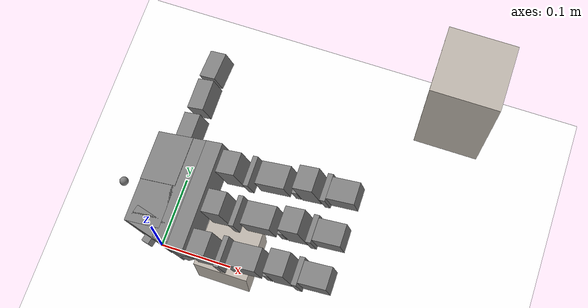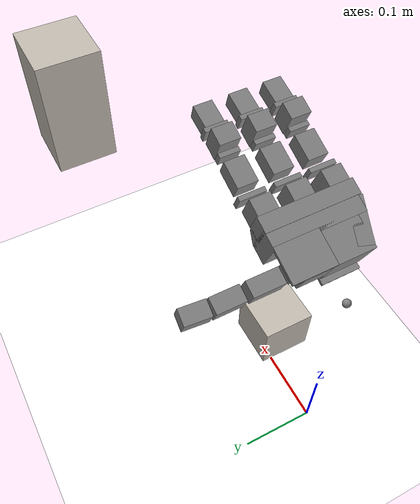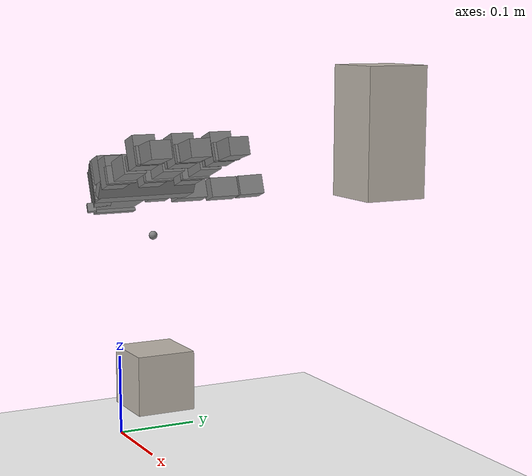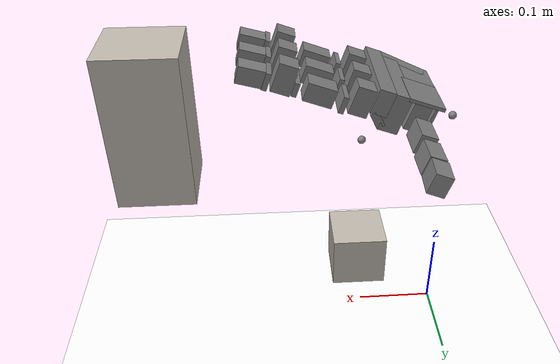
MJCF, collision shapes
<mujoco model="leap_scene">
  <include file="leap_rh_freejoint_mjx.xml"/>
  <include file="../cube/reorientation_cube.xml"/>

  <statistic center="0.15 0 0" extent="0.4" meansize="0.01"/>
  <size nuserdata="1"/>

  <default>
    <default class="translation">
      <position kp="10" dampratio="1" ctrlrange="-.5 .5"/>
    </default>
    <default class="rotation">
      <position kp=".5" dampratio="1" ctrlrange="-1.571 1.571"/>
    </default>
  </default>

  <visual>
    <headlight diffuse=".8 .8 .8" ambient=".2 .2 .2" specular="1 1 1"/>
    <rgba force="1 0 0 1"/>
    <global azimuth="120" elevation="-20"/>
    <map force="0.01" stiffness="500"/>
    <scale forcewidth="0.1" contactwidth="0.5" contactheight="0.2"/>
    <quality shadowsize="8192"/>
  </visual>

  <asset>
    <texture type="skybox" builtin="gradient" rgb1="1 1 1" rgb2="1 1 1" width="800" height="800"/>
    <texture type="2d" name="groundplane" builtin="checker" mark="edge" rgb1="1 1 1" rgb2="1 1 1" markrgb="0 0 0"
      width="300" height="300"/>
    <material name="groundplane" texture="groundplane" texuniform="true" texrepeat="5 5" reflectance="0"/>
  </asset>

  <default>
    <default class="cube">
      <geom friction="0.3 0.05 0.01" conaffinity="2" />
    </default>
  </default>

  <worldbody>
    <camera name="side" pos="-0.183 0.396 0.296" xyaxes="-0.783 -0.622 -0.000 0.332 -0.419 0.845"/>
    <geom name="floor" pos="0 0 0" size="0 0 0.01" type="plane" material="groundplane" contype="1" conaffinity="1"/>
    <body name="target" mocap="true" pos="0.325 0.17 0.4">
      <geom type="box" size=".035 .035 .07" mass=".108" material="cube" contype="0" conaffinity="0" group="2"/>
    </body>
  </worldbody>

  <actuator>
    <general name="LRTx" site="leap_base" refsite="reference" gear="1 0 0 0 0 0" class="translation"/>
    <general name="LRTy" site="leap_base" refsite="reference" gear="0 1 0 0 0 0" class="translation"/>
    <general name="LRTz" site="leap_base" refsite="reference" gear="0 0 1 0 0 0" class="translation"/>
    <general name="LRRx" site="leap_base" refsite="reference" gear="0 0 0 1 0 0" class="rotation"/>
    <general name="LRRy" site="leap_base" refsite="reference" gear="0 0 0 0 1 0" class="rotation"/>
    <general name="LRRz" site="leap_base" refsite="reference" gear="0 0 0 0 0 1" class="rotation"/>
  </actuator>

  <sensor>
    <!-- cube. -->
    <framepos name="cube_position" objtype="body" objname="cube"/>
    <contact name="cube_contact_with_palm" geom1="cube" geom2="palm_visual" data="found force"/>
    <contact name="cube_contact_with_th_tip" geom1="cube" geom2="th_tip" data="found force"/>
    <contact name="cube_contact_with_if_tip" geom1="cube" geom2="if_tip" data="found force"/>
    <contact name="cube_contact_with_mf_tip" geom1="cube" geom2="mf_tip" data="found force"/>
    <contact name="cube_contact_with_rf_tip" geom1="cube" geom2="rf_tip" data="found force"/>
    <framepos name="cube_distance_to_grasp" objtype="body" objname="cube" reftype="site" refname="grasp_site" />
    <framepos name="cube_distance_from_target" objtype="body" objname="cube" reftype="body" refname="target"/>
    <framequat name="cube_orientation_from_target" objtype="body" objname="cube" reftype="body" refname="target"/>
    <framepos name="grasp_distance_from_target" objtype="site" objname="grasp_site" reftype="body" refname="target"/>
    <framelinvel name="cube_linvel" objtype="body" objname="cube"/>
    <frameangvel name="cube_angvel" objtype="body" objname="cube"/>
    <frameangacc name="cube_angacc" objtype="body" objname="cube"/>
    <framezaxis name="cube_upvector" objtype="body" objname="cube"/>

    <!-- hand. -->
    <framepos name="palm_position" objtype="site" objname="grasp_site"/>
    <framepos name="th_tip_distance_to_cube" objtype="site" objname="th_tip" reftype="body" refname="cube"/>
    <framepos name="if_tip_distance_to_cube" objtype="site" objname="if_tip" reftype="body" refname="cube"/>
    <framepos name="mf_tip_distance_to_cube" objtype="site" objname="mf_tip" reftype="body" refname="cube"/>
    <framepos name="rf_tip_distance_to_cube" objtype="site" objname="rf_tip" reftype="body" refname="cube"/>

    <!-- goal. -->
    <framequat name="cube_goal_orientation" objtype="body" objname="target"/>
    <framezaxis name="cube_goal_upvector" objtype="body" objname="target"/>
  </sensor>

</mujoco>

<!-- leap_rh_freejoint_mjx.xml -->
<mujoco model="leap_rh">
  <compiler angle="radian" autolimits="true" assetdir="assets"/>

  <option timestep="0.01" integrator="Euler" iterations="5" ls_iterations="8">
    <flag eulerdamp="disable"/>
  </option>

  <custom>
    <numeric data="30" name="max_contact_points"/>
    <numeric data="12" name="max_geom_pairs"/>
  </custom>

  <asset>
    <material name="black" rgba="0.2 0.2 0.2 1"/>
    <material name="gray" rgba="0.5 0.5 0.5 1"/>
    <mesh name="leap_mount" file="leap_mount.obj"/>

    <mesh name="palm" file="palm_right.obj"/>
    <mesh name="base" file="base.obj"/>
    <mesh name="proximal" file="proximal.obj"/>
    <mesh name="medial" file="medial.obj"/>
    <mesh name="distal" file="distal.obj"/>
    <mesh name="tip" file="tip.obj"/>
    <mesh name="thumb_base" file="thumb_base.obj"/>
    <mesh name="thumb_proximal" file="thumb_proximal.obj"/>
    <mesh name="thumb_distal" file="thumb_distal.obj"/>
    <mesh name="thumb_tip" file="thumb_tip.obj"/>
  </asset>

  <default>
    <default class="leap_rh">
      <geom group="3" friction="0.2" solref="0.02 1.5" solimp="0.9 0.99 0.001"/>
      <default class="visual">
        <geom group="2" type="mesh" contype="0" conaffinity="0" density="0" material="black"/>
      </default>
      <default class="tip">
        <geom size="0.01 0.012 0.016" pos="-0.0012969 -0.0335524 0.0145207"
              quat="0.703552 0.709596 -0.0292107 -0.0252203" type="box" friction="0.7 0.05 0.0002" rgba=".5 .5 .5 .3"/>
      </default>
      <default class="thumb_tip">
        <geom size="0.01 0.012 0.016" pos="-0.00127744 -0.0455619 -0.0144774"
              quat="0.708101 0.705072 -0.0294902 -0.024426" type="box" friction="0.7 0.05 0.0002" rgba=".5 .5 .5 .3"/>
      </default>

      <position kp="3.0" inheritrange="1"/>
      <!-- armature = rotor inertia * gear ratio^2 = 1.7 * 1e-8 * 288*288 = 0.00149376 -->
      <!-- max torque = 0.2196 = 600/1000*0.366 -->
      <!-- frictionloss = rough guess, small ish value -->
      <joint axis="0 0 -1" damping="0.2" armature="0.00149376" actuatorfrcrange="-0.2196 0.2196" frictionloss="0.02"/>

      <default class="mcp">
        <joint range="-0.314 2.23"/>
      </default>
      <default class="rot">
        <joint range="-1.047 1.047"/>
      </default>
      <default class="pip">
        <joint range="-0.506 1.885"/>
      </default>
      <default class="dip">
        <joint range="-0.366 2.042"/>
      </default>
      <default class="thumb_cmc">
        <joint range="-0.349 2.094"/>
      </default>
      <default class="thumb_axl">
        <joint range="-0.349 2.094"/>
      </default>
      <default class="thumb_mcp">
        <joint range="-0.47 2.443"/>
      </default>
      <default class="thumb_ipl">
        <joint range="-1.34 1.88"/>
      </default>

    </default>
  </default>

  <contact>
    <!-- filter the palm from all other finger bodies except the tips -->
    <exclude body1="palm" body2="if_bs"/>
    <exclude body1="palm" body2="mf_bs"/>
    <exclude body1="palm" body2="rf_bs"/>
    <exclude body1="palm" body2="th_mp"/>

    <exclude body1="palm" body2="if_px"/>
    <exclude body1="palm" body2="mf_px"/>
    <exclude body1="palm" body2="rf_px"/>
    <exclude body1="palm" body2="th_bs"/>

    <exclude body1="palm" body2="if_md"/>
    <exclude body1="palm" body2="mf_md"/>
    <exclude body1="palm" body2="rf_md"/>
    <exclude body1="palm" body2="th_px"/>

    <!-- filter the mount from all finger bodies except the tips -->
    <exclude body1="leap_mount" body2="if_bs"/>
    <exclude body1="leap_mount" body2="mf_bs"/>
    <exclude body1="leap_mount" body2="rf_bs"/>
    <exclude body1="leap_mount" body2="th_mp"/>

    <exclude body1="leap_mount" body2="if_px"/>
    <exclude body1="leap_mount" body2="mf_px"/>
    <exclude body1="leap_mount" body2="rf_px"/>
    <exclude body1="leap_mount" body2="th_bs"/>

    <exclude body1="leap_mount" body2="if_md"/>
    <exclude body1="leap_mount" body2="mf_md"/>
    <exclude body1="leap_mount" body2="rf_md"/>
    <exclude body1="leap_mount" body2="th_px"/>

    <!-- none of the base fingertip geoms can touch each other -->
    <exclude body1="if_bs" body2="mf_bs"/>
    <exclude body1="if_bs" body2="rf_bs"/>
    <exclude body1="mf_bs" body2="rf_bs"/>

    <exclude body1="th_mp" body2="if_bs"/>
    <exclude body1="th_mp" body2="mf_bs"/>
    <exclude body1="th_mp" body2="rf_bs"/>
  </contact>

  <worldbody>
    <light name="spotlight" mode="targetbodycom" target="palm" pos="3 0 4"/>
    <site name="reference" pos="0 0 0.3" quat="0 1 0 0"/>
    <body name="leap_mount" pos="0 0 0.3" quat="0 1 0 0" childclass="leap_rh" gravcomp="1">
      <site name="leap_base"/>
      <freejoint name="leap_base_freejoint"/>
      <geom name="leap_mount_visual" pos="0 0 0" quat="1 0 0 0" class="visual" mesh="leap_mount"/>
      <geom name="leap_mount_collision_0" size="0.002 0.025 0.005" pos="0.0405 0.02 0.009"
            quat="0.57346234 0 0.81923192 0" type="box"/>
      <geom name="leap_mount_collision_1" size="0.005 0.005 0.005" pos="0.05 0.053 0.002"
            quat="0.4987168 0.64994038 -0.34910175 0.45495826" type="box"/>
      <site name="grasp_site" pos="0.11 0.0 0.03"/>
      <body name="palm" pos="0.124 -0.0305 -0.06045" quat="0 1 0 -0.175" gravcomp="1">
        <inertial pos="-0.049542 -0.042914 -0.010227" quat="0.565586 0.427629 -0.574956 0.408254" mass="0.237"
                  diaginertia="0.000407345 0.000304759 0.000180736"/>
        <geom name="palm_visual" pos="-0.02 0.02575 -0.0347" quat="1 0 0 0" class="visual" mesh="palm"/>
        <geom name="palm_collision_1" size="0.011 0.013 0.017" pos="-0.009 0.008 -0.011" type="box"/>
        <geom name="palm_collision_2" size="0.011 0.013 0.017" pos="-0.009 -0.037 -0.011" type="box"/>
        <geom name="palm_collision_3" size="0.011 0.013 0.017" pos="-0.009 -0.082 -0.011" type="box"/>
        <geom name="palm_collision_4" size="0.029 0.01 0.023" pos="-0.066 -0.078 -0.0115" quat="0.989016 0 0 -0.147806"
              type="box"/>
        <geom name="palm_collision_5" size="0.01 0.06 0.015" pos="-0.03 -0.035 -0.003" type="box"/>
        <geom name="palm_collision_6" size="0.005 0.06 0.01" pos="-0.032 -0.035 -0.024" quat="0.923956 0 0.382499 0"
              type="box"/>
        <geom name="palm_collision_7" size="0.012 0.058 0.023" pos="-0.048 -0.033 -0.0115" type="box"/>
        <geom name="palm_collision_8" size="0.022 0.026 0.023" pos="-0.078 -0.053 -0.0115" type="box"/>
        <geom name="palm_collision_9" size="0.002 0.018 0.017" pos="-0.098 -0.009 -0.006" type="box"/>
        <geom name="palm_collision_10" size="0.022 0.028 0.002" pos="-0.078 -0.003 0.01" type="box"/>
        <body name="if_bs" pos="-0.007 0.023 -0.0187" quat="0.5 0.5 0.5 -0.5" gravcomp="1">
          <inertial pos="-0.022516 0.033882 0.016359" quat="0.388092 0.677951 -0.247713 0.573067" mass="0.044"
                    diaginertia="1.74972e-05 1.61504e-05 7.21342e-06"/>
          <joint name="if_mcp" class="mcp"/>
          <geom name="if_bs_visual" pos="0.0084 0.0077 0.01465" quat="1 0 0 0" class="visual" mesh="base"/>
          <geom name="if_bs_collision" size="0.01 0.003 0.017" pos="0 0.018 0.0147" type="box"/>
          <body name="if_px" pos="-0.0122 0.0381 0.0145" quat="0.500003 -0.5 -0.499997 0.5" gravcomp="1">
            <inertial pos="0.0075 -0.0002 -0.011" quat="0 0.707107 0 0.707107" mass="0.032"
                      diaginertia="4.8853e-06 4.3733e-06 3.0933e-06"/>
            <joint name="if_rot" class="rot"/>
            <geom name="if_px_visual" pos="0.0096 0.0002 0.0007" quat="0.500003 -0.5 -0.5 -0.499997" class="visual"
                  mesh="proximal"/>
            <geom name="if_px_collision" size="0.017 0.013 0.011" pos="0.0075 -0.0002 -0.011" type="box"/>

            <body name="if_md" pos="0.015 0.0143 -0.013" quat="0.500003 0.5 -0.5 0.499997" gravcomp="1">
              <inertial pos="0.0054215 -0.029148 0.015" quat="0.687228 0.687228 0.166487 0.166487" mass="0.037"
                        diaginertia="8.28004e-06 8.1598e-06 5.39516e-06"/>
              <joint name="if_pip" class="pip"/>
              <geom name="if_md_visual" pos="0.0211 -0.0084 0.0097" quat="2.67949e-08 -1 0 0" class="visual"
                    mesh="medial"/>
              <geom name="if_md_collision_1" size="0.008 0.003 0.013" pos="0 -0.02 0.015" type="box"/>
              <geom name="if_md_collision_2" size="0.017 0.011 0.013" pos="0.0075 -0.035 0.015" type="box"/>
              <body name="if_ds" pos="0 -0.0361 0.0002" gravcomp="1">
                <inertial pos="-0.0008794 -0.027019 0.014594" quat="0.702905 0.710643 -0.0212937 -0.0214203"
                          mass="0.016" diaginertia="3.71863e-06 3.02396e-06 1.6518e-06"/>
                <joint name="if_dip" class="dip"/>
                <geom name="if_ds_visual" pos="0.0132 -0.0061 0.0144" quat="2.67949e-08 1 0 0" class="visual"
                      mesh="distal"/>
                <geom name="if_ds_collision" size="0.01 0.003 0.015" pos="0 -0.017 0.015" type="box"/>
                <geom name="if_tip" class="tip"/>
                <geom type="mesh" mesh="tip" class="visual" material="gray"/>
                <site name="if_tip" pos="0 -0.05 0.015" group="4"/>
              </body>
            </body>
          </body>
        </body>
        <body name="mf_bs" pos="-0.0071 -0.0224 -0.0187" quat="0.500003 0.5 0.5 -0.499997" gravcomp="1">
          <inertial pos="-0.022516 0.033882 0.016359" quat="0.388092 0.677951 -0.247713 0.573067" mass="0.044"
                    diaginertia="1.74972e-05 1.61504e-05 7.21342e-06"/>
          <joint name="mf_mcp" class="mcp"/>
          <geom name="mf_bs_visual" pos="0.0084 0.0077 0.01465" quat="1 0 0 0" class="visual" mesh="base"/>
          <geom name="mf_bs_collision" size="0.01 0.003 0.017" pos="0 0.018 0.0147" type="box"/>
          <body name="mf_px" pos="-0.0122 0.0381 0.0145" quat="0.500003 -0.5 -0.499997 0.5" gravcomp="1">
            <inertial pos="0.0075 -0.0002 -0.011" quat="0 0.707107 0 0.707107" mass="0.032"
                      diaginertia="4.8853e-06 4.3733e-06 3.0933e-06"/>
            <joint name="mf_rot" class="rot"/>
            <geom name="mf_px_visual" pos="0.0096 0.0003 0.0007" quat="0.500003 -0.5 -0.5 -0.499997" class="visual"
                  mesh="proximal"/>
            <geom name="mf_px_collision" size="0.017 0.013 0.011" pos="0.0075 -0.0002 -0.011" type="box"/>
            <body name="mf_md" pos="0.015 0.0143 -0.013" quat="0.500003 0.5 -0.5 0.499997" gravcomp="1">
              <inertial pos="0.0054215 -0.029148 0.015" quat="0.687228 0.687228 0.166487 0.166487" mass="0.037"
                        diaginertia="8.28004e-06 8.1598e-06 5.39516e-06"/>
              <joint name="mf_pip" class="pip"/>
              <geom name="mf_md_visual" pos="0.0211 -0.0084 0.0097" quat="1.32679e-06 -1 0 0" class="visual"
                    mesh="medial"/>
              <geom name="mf_md_collision_1" size="0.008 0.003 0.013" pos="0 -0.02 0.015" type="box"/>
              <geom name="mf_md_collision_2" size="0.017 0.011 0.013" pos="0.0075 -0.035 0.015" type="box"/>
              <body name="mf_ds" pos="0 -0.0361 0.0002" gravcomp="1">
                <inertial pos="-0.0008794 -0.027019 0.014594" quat="0.702905 0.710643 -0.0212937 -0.0214203"
                          mass="0.016" diaginertia="3.71863e-06 3.02396e-06 1.6518e-06"/>
                <joint name="mf_dip" class="dip"/>
                <geom name="mf_ds_visual" pos="0.0132 -0.0061 0.0145" quat="1.32679e-06 1 0 0" class="visual"
                      mesh="distal"/>
                <geom name="mf_ds_collision" size="0.01 0.003 0.015" pos="0 -0.017 0.015" type="box"/>
                <geom name="mf_tip" class="tip"/>
                <geom type="mesh" mesh="tip" class="visual" material="gray"/>
                <site name="mf_tip" pos="0 -0.05 0.015" group="4"/>
              </body>
            </body>
          </body>
        </body>
        <body name="rf_bs" pos="-0.00709 -0.0678 -0.0187" quat="0.500003 0.5 0.5 -0.499997" gravcomp="1">
          <inertial pos="-0.022516 0.033882 0.016359" quat="0.388092 0.677951 -0.247713 0.573067" mass="0.044"
                    diaginertia="1.74972e-05 1.61504e-05 7.21342e-06"/>
          <joint name="rf_mcp" class="mcp"/>
          <geom name="rf_bs_visual" pos="0.0084 0.0077 0.01465" quat="1 0 0 0" class="visual" mesh="base"/>
          <geom name="rf_bs_collision" size="0.01 0.003 0.017" pos="0 0.018 0.0147" type="box"/>
          <body name="rf_px" pos="-0.0122 0.0381 0.0145" quat="0.500003 -0.5 -0.499997 0.5" gravcomp="1">
            <inertial pos="0.0075 -0.0002 -0.011" quat="0 0.707107 0 0.707107" mass="0.032"
                      diaginertia="4.8853e-06 4.3733e-06 3.0933e-06"/>
            <joint name="rf_rot" class="rot"/>
            <geom name="rf_px_visual" pos="0.0096 0.0003 0.0007" quat="0.500003 -0.5 -0.5 -0.499997" class="visual"
                  mesh="proximal"/>
            <geom name="rf_px_collision" size="0.017 0.013 0.011" pos="0.0075 -0.0002 -0.011" type="box"/>
            <body name="rf_md" pos="0.015 0.0143 -0.013" quat="0.500003 0.5 -0.5 0.499997" gravcomp="1">
              <inertial pos="0.0054215 -0.029148 0.015" quat="0.687228 0.687228 0.166487 0.166487" mass="0.037"
                        diaginertia="8.28004e-06 8.1598e-06 5.39516e-06"/>
              <joint name="rf_pip" class="pip"/>
              <geom name="rf_md_visual" pos="0.0211 -0.0084 0.0097" quat="0 -1 0 0" class="visual" mesh="medial"/>
              <geom name="rf_md_collision_1" size="0.008 0.003 0.013" pos="0 -0.02 0.015" type="box"/>
              <geom name="rf_md_collision_2" size="0.017 0.011 0.013" pos="0.0075 -0.035 0.015" type="box"/>
              <body name="rf_ds" pos="0 -0.03609 0.0002" gravcomp="1">
                <inertial pos="-0.0008794 -0.027019 0.014594" quat="0.702905 0.710643 -0.0212937 -0.0214203"
                          mass="0.016" diaginertia="3.71863e-06 3.02396e-06 1.6518e-06"/>
                <joint name="rf_dip" class="dip"/>
                <geom name="rf_ds_visual" pos="0.0132 -0.0061 0.0145" quat="0 1 0 0" class="visual" mesh="distal"/>
                <geom name="rf_ds_collision" size="0.01 0.003 0.015" pos="0 -0.017 0.015" type="box"/>
                <geom name="rf_tip" class="tip"/>
                <geom type="mesh" mesh="tip" class="visual" material="gray"/>
                <site name="rf_tip" pos="0 -0.05 0.015" group="4"/>
              </body>
            </body>
          </body>
        </body>
        <body name="th_mp" pos="-0.0693 -0.0012 -0.0216" quat="0.707109 0 0.707105 0" gravcomp="1">
          <inertial pos="0.0075 -0.0002 -0.011" quat="0 0.707107 0 0.707107" mass="0.032"
                    diaginertia="4.8853e-06 4.3733e-06 3.0933e-06"/>
          <joint name="th_cmc" class="thumb_cmc"/>
          <geom name="th_mp_visual" pos="-0.0053 0.0003 0.00078" quat="0.500003 -0.5 -0.5 -0.499997" class="visual"
                mesh="proximal"/>
          <geom name="th_mp_collision" size="0.017 0.013 0.011" pos="-0.0075 -0.0002 -0.011" type="box"/>
          <body name="th_bs" pos="0 0.0143 -0.013" quat="0.500003 0.5 -0.5 0.499997" gravcomp="1">
            <inertial pos="0 0 -0.0070806" quat="0.707107 0.707107 0 0" mass="0.003"
                      diaginertia="6.1932e-07 5.351e-07 2.1516e-07"/>
            <joint name="th_axl" class="thumb_axl"/>
            <geom name="th_bs_collision" pos="0.01196 0 -0.0158" quat="0.707109 0.707105 0 0" class="visual"
                  mesh="thumb_base"/>
            <body name="th_px" pos="0 0.0145 -0.017" quat="0.707109 -0.707105 0 0" gravcomp="1">
              <inertial pos="-0.0020593 0.015912 -0.013733" quat="0.698518 0.697382 -0.104933 0.121324" mass="0.038"
                        diaginertia="9.87104e-06 9.32653e-06 4.36203e-06"/>
              <joint name="th_mcp" class="thumb_mcp"/>
              <geom name="th_px_visual" pos="0.0439 0.0579 -0.0086" quat="1 0 0 0" class="visual"
                    mesh="thumb_proximal"/>
              <geom name="th_px_collision" size="0.01 0.02 0.012" pos="0 0.0105 -0.014" type="box"/>
              <body name="th_ds" pos="0 0.0466 0.0002" quat="1.32679e-06 0 0 1" gravcomp="1">
                <inertial pos="0.00096191 -0.024203 -0.014419" quat="0.35287 0.311272 -0.632839 0.614904" mass="0.049"
                          diaginertia="2.08591e-05 2.0402e-05 4.71335e-06"/>
                <joint name="th_ipl" class="thumb_ipl"/>
                <geom name="th_ds_visual" pos="0.0625 0.0784 0.0489" quat="1 0 0 0" class="visual" mesh="thumb_distal"/>
                <geom name="th_ds_collision" size="0.01 0.018 0.012" pos="0 -0.0085 -0.015" type="box"/>
                <geom name="th_tip" class="thumb_tip"/>
                <site name="th_tip" pos="0 -0.06 -0.015" group="4"/>
                <geom type="mesh" mesh="thumb_tip" class="visual" material="gray"/>
              </body>
            </body>
          </body>
        </body>
      </body>
    </body>
  </worldbody>

  <actuator>
    <position name="if_mcp_act" joint="if_mcp" class="mcp"/>
    <position name="if_rot_act" joint="if_rot" class="rot"/>
    <position name="if_pip_act" joint="if_pip" class="pip"/>
    <position name="if_dip_act" joint="if_dip" class="dip"/>
    <position name="mf_mcp_act" joint="mf_mcp" class="mcp"/>
    <position name="mf_rot_act" joint="mf_rot" class="rot"/>
    <position name="mf_pip_act" joint="mf_pip" class="pip"/>
    <position name="mf_dip_act" joint="mf_dip" class="dip"/>
    <position name="rf_mcp_act" joint="rf_mcp" class="mcp"/>
    <position name="rf_rot_act" joint="rf_rot" class="rot"/>
    <position name="rf_pip_act" joint="rf_pip" class="pip"/>
    <position name="rf_dip_act" joint="rf_dip" class="dip"/>
    <position name="th_cmc_act" joint="th_cmc" class="thumb_cmc"/>
    <position name="th_axl_act" joint="th_axl" class="thumb_axl"/>
    <position name="th_mcp_act" joint="th_mcp" class="thumb_mcp"/>
    <position name="th_ipl_act" joint="th_ipl" class="thumb_ipl"/>
  </actuator>
</mujoco>

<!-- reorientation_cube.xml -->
<mujoco>
  <asset>
    <texture name="cube" type="cube"
      fileup="reorientation_cube_textures/fileup.png"
      fileback="reorientation_cube_textures/fileback.png"
      filedown="reorientation_cube_textures/filedown.png"
      filefront="reorientation_cube_textures/filefront.png"
      fileleft="reorientation_cube_textures/fileleft.png"
      fileright="reorientation_cube_textures/fileright.png" />
    <material name="cube" texture="cube" />
    <texture name="graycube" type="cube"
      fileup="reorientation_cube_textures/grayup.png"
      fileback="reorientation_cube_textures/grayback.png"
      filedown="reorientation_cube_textures/graydown.png"
      filefront="reorientation_cube_textures/grayfront.png"
      fileleft="reorientation_cube_textures/grayleft.png"
      fileright="reorientation_cube_textures/grayright.png" />
    <material name="graycube" texture="graycube" />
  </asset>
  <worldbody>
    <light pos="0 0 1" />
    <body name="cube" pos="0.11 0.0 0.1" quat="1 0 0 0">
      <freejoint />
      <geom name="cube" type="box" size=".035 .035 .035" mass=".108" material="cube" friction="0.3 0.05 0.01" conaffinity="2"/>
      <site name="cube_center" pos="0 0 0" />
    </body>
  </worldbody>
</mujoco>
